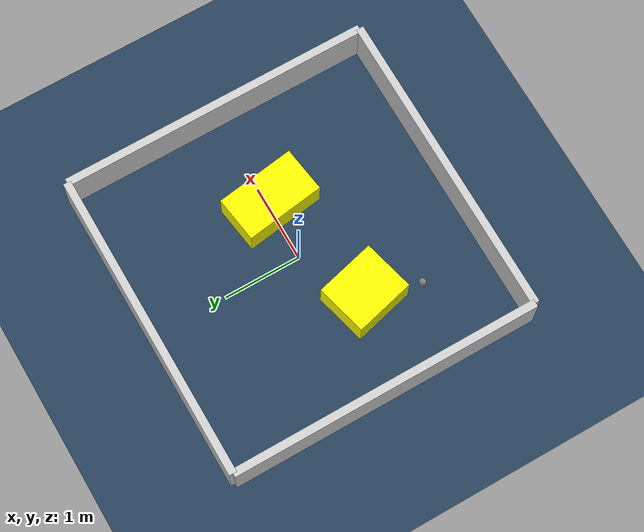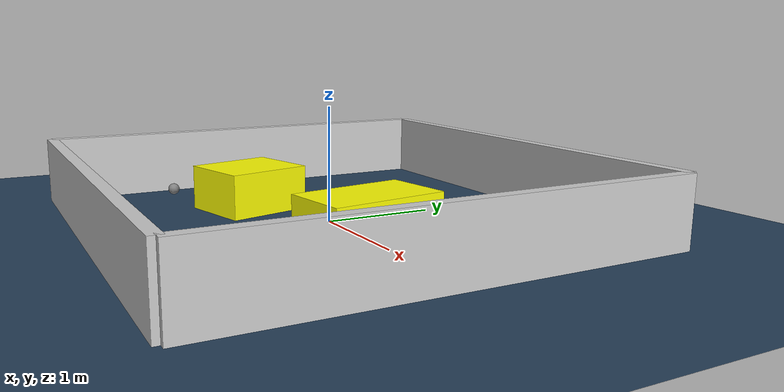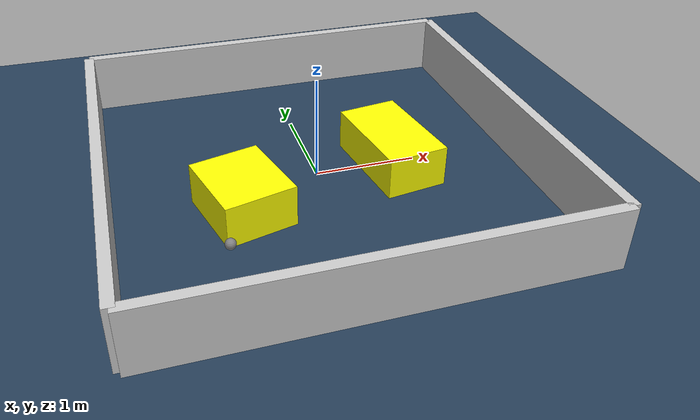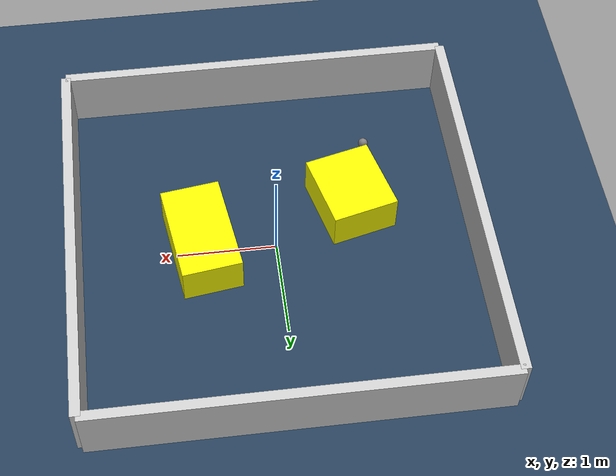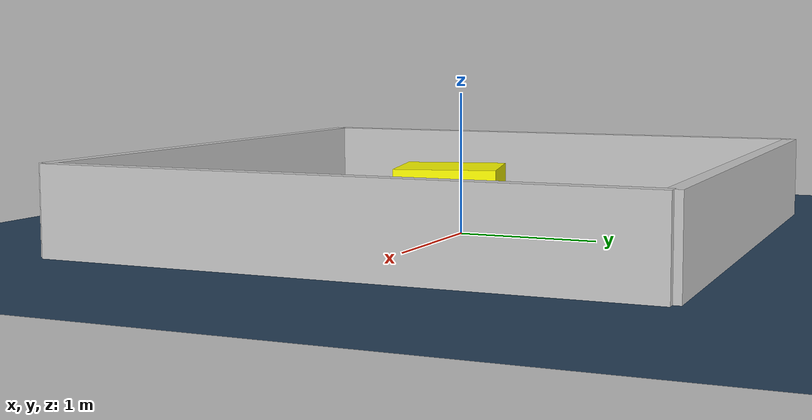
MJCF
<?xml version="1.0" ?>
<mujoco model="generated_environment">
  <option timestep="0.01" integrator="RK4" cone="elliptic"/>
  <default>
    <geom density="1"/>
  </default>
  <asset>
    <texture builtin="gradient" height="3072" rgb1="0.3 0.5 0.7" rgb2="0 0 0" type="skybox" width="512"/>
    <texture builtin="checker" height="300" mark="edge" markrgb="0.8 0.8 0.8" name="groundplane" rgb1="0.2 0.3 0.4" rgb2="0.1 0.2 0.3" type="2d" width="300"/>
    <material name="groundplane" reflectance="0.2" texrepeat="5 5" texture="groundplane" texuniform="true"/>
    <material name="robot" rgba="0.0 1.0 0.0 1"/>
  </asset>
  <worldbody>
    <light dir="0 0 -1" directional="true" pos="0 0 1.5"/>
    <geom condim="4" friction="1.0 0.005 0.001" material="groundplane" name="floor" size="0 0 0.05" type="plane"/>
    <body name="walls">
      <geom name="wall_1" condim="4" pos="-2.0 0.0 0.3" rgba="0.800000011920929 0.800000011920929 0.800000011920929 1.0" size="0.05 2.0 0.3" type="box"/>
      <geom name="wall_2" condim="4" pos="2.0 0.0 0.3" rgba="0.800000011920929 0.800000011920929 0.800000011920929 1.0" size="0.05 2.0 0.3" type="box"/>
      <geom name="wall_3" condim="4" pos="0.0 -2.0 0.3" rgba="0.800000011920929 0.800000011920929 0.800000011920929 1.0" size="2.0 0.05 0.3" type="box"/>
      <geom name="wall_4" condim="4" pos="0.0 2.0 0.3" rgba="0.800000011920929 0.800000011920929 0.800000011920929 1.0" size="2.0 0.05 0.3" type="box"/>
    </body>
    <body name="robot">
      <joint name="joint_x" type="slide" pos="0 0 0" axis="1 0 0"/>
      <joint name="joint_y" type="slide" pos="0 0 0" axis="0 1 0"/>
      <geom name="robot" type="sphere" pos="-1.0440925336953293 -1.080880601895244 0.2" size="0.05" mass="5." friction="1.0 0.005 0.0001" condim="4"/>
      <site name="sensor_ball"/>
    </body>
    <body name="obstacle_1_movable">
      <geom name="obstacle_1_movable" condim="4" pos="0.7460551337373533 -0.037520284405965665 0.2" euler="0 0 188.23401350201718" friction="1.0 0.005 0.001" rgba="1 1 0 1" size="0.298595996337975 0.516288741441419 0.2" type="box" mass="0.1"/>
      <joint type="free"/>
    </body>
    <body name="obstacle_2_movable">
      <geom name="obstacle_2_movable" condim="4" pos="-0.8108437529855914 -0.4252651526358626 0.2" euler="0 0 284.1260181767653" friction="1.0 0.005 0.001" rgba="1 1 0 1" size="0.39491762024831933 0.3374320993846631 0.2" type="box" mass="0.1"/>
      <joint type="free"/>
    </body>
  </worldbody>
  <actuator>
    <motor name="actuator_x" joint="joint_x" gear="1" ctrlrange="-1 1"/>
    <motor name="actuator_y" joint="joint_y" gear="1" ctrlrange="-1 1"/>
  </actuator>
</mujoco>
